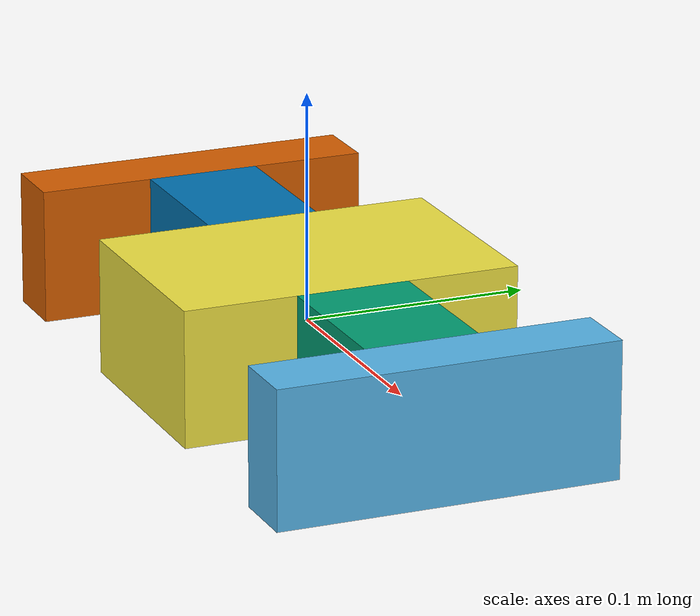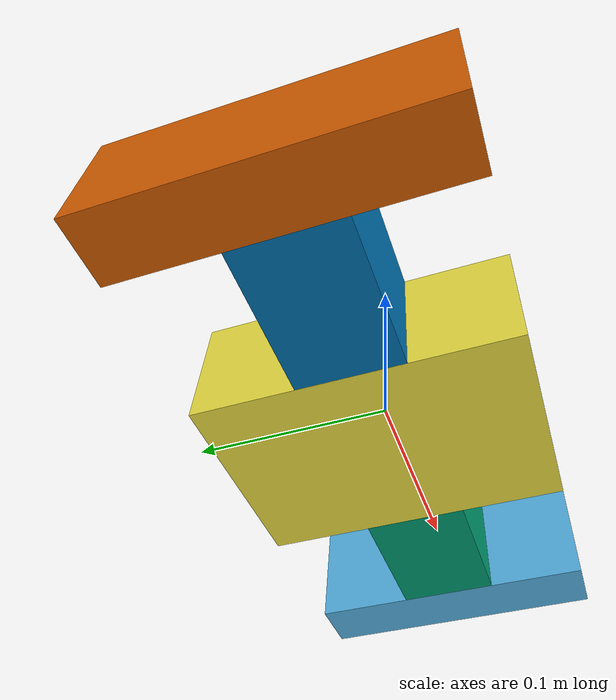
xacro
<?xml version="3.0"?>
<robot xmlns:xacro="http://www.ros.org/wiki/xacro">

    <xacro:property name="front_body_length" value="0.03" />
    <xacro:property name="middle_body_length" value="0.1" />
    <xacro:property name="end_body_length" value="0.03" />

    <xacro:property name="socket_width" value="0.05" />
    <xacro:property name="socket_length" value="0.07" />

    <xacro:property name="body_width" value="0.15" />
    <xacro:property name="body_height" value="0.06" />

    <link name="base_link" />

    <link name="front_body_link">
        <visual>
            <geometry>
                <box size="${front_body_length} ${body_width} ${body_height}" />
            </geometry>
            <origin xyz="0 0 0" rpy="0 0 0" />
            <material name="leg" />
        </visual>
        <collision>
            <geometry>
                <box size="${front_body_length} ${body_width} ${body_height}" />
            </geometry>
            <origin xyz="0 0 0" rpy="0 0 0" />
        </collision>
        <!-- inertial -->
        <xacro:box_inertia m="0.171" x="${front_body_length}" y="${body_width}" z="${body_height}" o_xyz="0 0 0" o_rpy="0 0 0" />
    </link>

    <link name="front_socket_link">
        <visual>
            <geometry>
                <box size="${socket_length} ${socket_width} ${body_height}" />
            </geometry>
            <origin xyz="0 0 0" rpy="0 0 0" />
            <material name="body" />
        </visual>
        <collision>
            <geometry>
                <box size="${socket_length} ${socket_width} ${body_height}" />
            </geometry>
            <origin xyz="0 0 0" rpy="0 0 0" />
        </collision>
        <!-- inertial -->
        <xacro:box_inertia m="0.033" x="${socket_length}" y="${socket_width}" z="${body_height}" o_xyz="0 0 0" o_rpy="0 0 0" />
    </link>

    <link name="middle_body_link">
        <visual>
            <geometry>
                <box size="${middle_body_length} ${body_width} ${body_height}" />
            </geometry>
            <origin xyz="0 0 0" rpy="0 0 0" />
            <material name="body" />
        </visual>
        <collision>
            <geometry>
                <box size="${middle_body_length} ${body_width} ${body_height}" />
            </geometry>
            <origin xyz="0 0 0" rpy="0 0 0" />
        </collision>
        <!-- inertial -->
        <xacro:box_inertia m="0.352" x="${middle_body_length}" y="${body_width}" z="${body_height}" o_xyz="0 0 0" o_rpy="0 0 0" />
    </link>

    <link name="end_socket_link">
        <visual>
            <geometry>
                <box size="${socket_length} ${socket_width} ${body_height}" />
            </geometry>
            <origin xyz="0 0 0" rpy="0 0 0" />
            <material name="body" />
        </visual>
        <collision>
            <geometry>
                <box size="${socket_length} ${socket_width} ${body_height}" />
            </geometry>
            <origin xyz="0 0 0" rpy="0 0 0" />
        </collision>
        <!-- inertial -->
        <xacro:box_inertia m="0.033" x="${socket_length}" y="${socket_width}" z="${body_height}" o_xyz="0 0 0" o_rpy="0 0 0" />
    </link>

    <link name="end_body_link">
        <visual>
            <geometry>
                <box size="${end_body_length} ${body_width} ${body_height}" />
            </geometry>
            <origin xyz="0 0 0" rpy="0 0 0" />
            <material name="body" />
        </visual>
        <collision>
            <geometry>
                <box size="${end_body_length} ${body_width} ${body_height}" />
            </geometry>
            <origin xyz="0 0 0" rpy="0 0 0" />
        </collision>
        <!-- inertial -->
        <xacro:box_inertia m="0.171" x="${end_body_length}" y="${body_width}" z="${body_height}" o_xyz="0 0 0" o_rpy="0 0 0" />
    </link>

    <link name="base_footprint" />

    <joint name="base_footprint_joint" type="fixed">
        <parent link="base_link" />
        <child link="base_footprint" />
        <origin xyz="0 0 0" rpy="0 0 0" />
    </joint>

    <joint name="base_body_joint" type="fixed">
        <parent link="base_link" />
        <child link="middle_body_link" />
        <origin xyz="0 0 0" rpy="0 0 0" />
    </joint>

    <joint name="front_middle_body_joint" type="fixed">
        <parent link="middle_body_link" />
        <child link="front_body_link" />
        <origin xyz="${(middle_body_length + front_body_length) / 2.0 + socket_length} 0 0" rpy="0 0 0" />
    </joint>

    <joint name="front_socket_middle_joint" type="fixed">
        <parent link="middle_body_link" />
        <child link="front_socket_link" />
        <origin xyz="${(middle_body_length + socket_length) / 2.0} 0 0" rpy="0 0 0" />
    </joint>

    <joint name="end_socket_middle_joint" type="fixed">
        <parent link="middle_body_link" />
        <child link="end_socket_link" />
        <origin xyz="${-(middle_body_length + socket_length) / 2.0} 0 0" rpy="0 0 0" />
    </joint>

    <joint name="end_middle_body_joint" type="fixed">
        <parent link="middle_body_link" />
        <child link="end_body_link" />
        <origin xyz="${-((middle_body_length + end_body_length) / 2.0 + socket_length)} 0 0" rpy="0 0 0" />
    </joint>

</robot>
